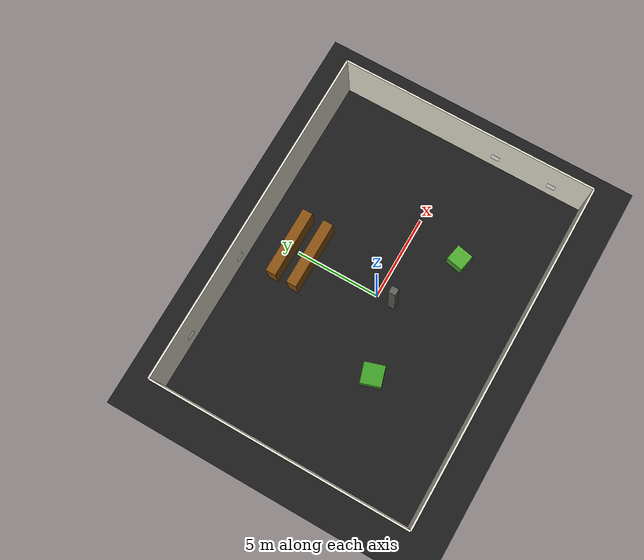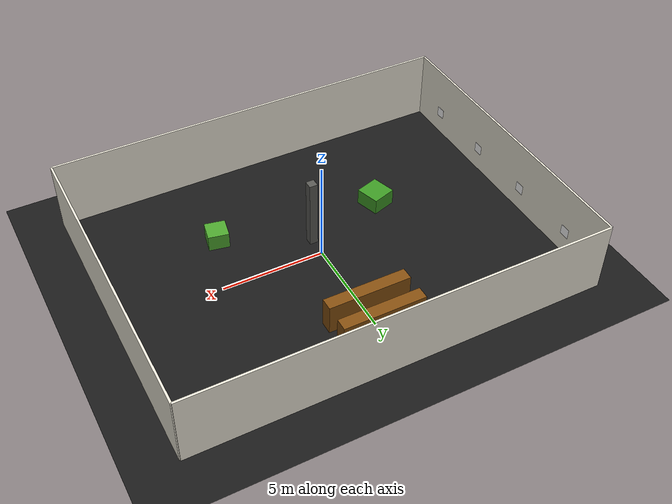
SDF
<sdf version="1.9">
 <world name="indoor_arena">
  <physics type="ode"><max_step_size>0.001</max_step_size><real_time_factor>1.0</real_time_factor></physics>
  <scene><ambient>0.6 0.6 0.6 1</ambient><background>0.7 0.7 0.7 1</background></scene>
  <light type="directional" name="sun">
   <pose>0 0 15 0 0 0</pose>
   <diffuse>0.9 0.9 0.9 1</diffuse>
   <specular>0.3 0.3 0.3 1</specular>
   <direction>-0.5 0.3 -1.0</direction>
  </light>
  <light type="point" name="ceiling_light_1">
   <pose>-4 3 4 0 0 0</pose>
   <diffuse>0.7 0.7 0.7 1</diffuse>
   <attenuation>
    <range>20</range>
    <constant>0.4</constant>
    <linear>0.01</linear>
    <quadratic>0.001</quadratic>
   </attenuation>
  </light>
  <light type="point" name="ceiling_light_2">
   <pose>4 3 4 0 0 0</pose>
   <diffuse>0.7 0.7 0.7 1</diffuse>
   <attenuation>
    <range>20</range>
    <constant>0.4</constant>
    <linear>0.01</linear>
    <quadratic>0.001</quadratic>
   </attenuation>
  </light>
  <light type="point" name="ceiling_light_3">
   <pose>-4 -4 4 0 0 0</pose>
   <diffuse>0.7 0.7 0.7 1</diffuse>
   <attenuation>
    <range>20</range>
    <constant>0.4</constant>
    <linear>0.01</linear>
    <quadratic>0.001</quadratic>
   </attenuation>
  </light>
  <light type="point" name="ceiling_light_4">
   <pose>4 -4 4 0 0 0</pose>
   <diffuse>0.7 0.7 0.7 1</diffuse>
   <attenuation>
    <range>20</range>
    <constant>0.4</constant>
    <linear>0.01</linear>
    <quadratic>0.001</quadratic>
   </attenuation>
  </light>
  <model name="ground_plane">
   <static>true</static>
   <link name="link">
    <collision name="collision">
     <geometry><plane><normal>0 0 1</normal><size>30 25</size></plane></geometry>
    </collision>
    <visual name="visual">
     <geometry><plane><normal>0 0 1</normal><size>30 25</size></plane></geometry>
     <material><ambient>0.1 0.1 0.1 1</ambient><diffuse>0.1 0.1 0.1 1</diffuse></material>
    </visual>
   </link>
  </model>
  <model name="wall_north">
   <static>true</static>
   <pose>0 7.55 1.75 0 0 0</pose>
   <link name="link">
    <collision name="collision"><geometry><box><size>20.1 0.1 3.5</size></box></geometry></collision>
    <visual name="visual">
     <geometry><box><size>20.1 0.1 3.5</size></box></geometry>
     <material><ambient>0.93 0.91 0.85 1</ambient><diffuse>0.93 0.91 0.85 1</diffuse></material>
    </visual>
   </link>
  </model>
  <model name="wall_south">
   <static>true</static>
   <pose>0 -7.55 1.75 0 0 0</pose>
   <link name="link">
    <collision name="collision"><geometry><box><size>20.1 0.1 3.5</size></box></geometry></collision>
    <visual name="visual">
     <geometry><box><size>20.1 0.1 3.5</size></box></geometry>
     <material><ambient>0.93 0.91 0.85 1</ambient><diffuse>0.93 0.91 0.85 1</diffuse></material>
    </visual>
   </link>
  </model>
  <model name="wall_east">
   <static>true</static>
   <pose>10.05 0 1.75 0 0 0</pose>
   <link name="link">
    <collision name="collision"><geometry><box><size>0.1 15.1 3.5</size></box></geometry></collision>
    <visual name="visual">
     <geometry><box><size>0.1 15.1 3.5</size></box></geometry>
     <material><ambient>0.93 0.91 0.85 1</ambient><diffuse>0.93 0.91 0.85 1</diffuse></material>
    </visual>
   </link>
  </model>
  <model name="wall_west">
   <static>true</static>
   <pose>-10.05 0 1.75 0 0 0</pose>
   <link name="link">
    <collision name="collision"><geometry><box><size>0.1 15.1 3.5</size></box></geometry></collision>
    <visual name="visual">
     <geometry><box><size>0.1 15.1 3.5</size></box></geometry>
     <material><ambient>0.93 0.91 0.85 1</ambient><diffuse>0.93 0.91 0.85 1</diffuse></material>
    </visual>
   </link>
  </model>
  <model name="shelf_a1">
   <static>true</static>
   <pose>0.0 5.5 0.75 0 0 0</pose>
   <link name="link">
    <collision name="collision"><geometry><box><size>4.0 0.6 1.5</size></box></geometry></collision>
    <visual name="visual">
     <geometry><box><size>4.0 0.6 1.5</size></box></geometry>
     <material><ambient>0.52 0.31 0.06 1</ambient><diffuse>0.52 0.31 0.06 1</diffuse></material>
    </visual>
   </link>
  </model>
  <model name="shelf_a2">
   <static>true</static>
   <pose>0.0 4.2 0.75 0 0 0</pose>
   <link name="link">
    <collision name="collision"><geometry><box><size>4.0 0.6 1.5</size></box></geometry></collision>
    <visual name="visual">
     <geometry><box><size>4.0 0.6 1.5</size></box></geometry>
     <material><ambient>0.52 0.31 0.06 1</ambient><diffuse>0.52 0.31 0.06 1</diffuse></material>
    </visual>
   </link>
  </model>
  <model name="crate_1">
   <static>true</static>
   <pose>-4.0 -2.0 0.4 0 0 0.3</pose>
   <link name="link">
    <collision name="collision"><geometry><box><size>1.2 1.2 0.8</size></box></geometry></collision>
    <visual name="visual">
     <geometry><box><size>1.2 1.2 0.8</size></box></geometry>
     <material><ambient>0.24 0.60 0.14 1</ambient><diffuse>0.24 0.60 0.14 1</diffuse></material>
    </visual>
   </link>
  </model>
  <model name="crate_2">
   <static>true</static>
   <pose>4.0 -3.0 0.4 0 0 -0.2</pose>
   <link name="link">
    <collision name="collision"><geometry><box><size>1.0 1.0 0.8</size></box></geometry></collision>
    <visual name="visual">
     <geometry><box><size>1.0 1.0 0.8</size></box></geometry>
     <material><ambient>0.30 0.65 0.18 1</ambient><diffuse>0.30 0.65 0.18 1</diffuse></material>
    </visual>
   </link>
  </model>
  <model name="pillar_1">
   <static>true</static>
   <pose>0.0 -1.0 1.75 0 0 0</pose>
   <link name="link">
    <collision name="collision"><geometry><box><size>0.4 0.4 3.5</size></box></geometry></collision>
    <visual name="visual">
     <geometry><box><size>0.4 0.4 3.5</size></box></geometry>
     <material><ambient>0.35 0.35 0.33 1</ambient><diffuse>0.35 0.35 0.33 1</diffuse></material>
    </visual>
   </link>
  </model>
  <include><uri>model://aruco_marker_0</uri><pose>-7.0 7.47 1.2 0 0 0</pose><name>aruco_0</name></include>
  <include><uri>model://aruco_marker_1</uri><pose>-2.0 7.47 1.2 0 0 0</pose><name>aruco_1</name></include>
  <include>
   <uri>model://aruco_marker_10</uri>
   <pose>9.97 -2.0 1.2 0 0 -1.5708</pose>
   <name>aruco_10</name>
  </include>
  <include>
   <uri>model://aruco_marker_11</uri>
   <pose>9.97 -5.5 1.2 0 0 -1.5708</pose>
   <name>aruco_11</name>
  </include>
  <include>
   <uri>model://aruco_marker_12</uri>
   <pose>-9.97 5.0 1.2 0 0 1.5708</pose>
   <name>aruco_12</name>
  </include>
  <include>
   <uri>model://aruco_marker_13</uri>
   <pose>-9.97 1.5 1.2 0 0 1.5708</pose>
   <name>aruco_13</name>
  </include>
  <include>
   <uri>model://aruco_marker_14</uri>
   <pose>-9.97 -2.0 1.2 0 0 1.5708</pose>
   <name>aruco_14</name>
  </include>
  <include>
   <uri>model://aruco_marker_15</uri>
   <pose>-9.97 -5.5 1.2 0 0 1.5708</pose>
   <name>aruco_15</name>
  </include>
 </world>
</sdf>

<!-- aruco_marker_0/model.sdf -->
<sdf version="1.9">
  <model name="aruco_marker_0">
    <static>true</static>
    <link name="link">
      <visual name="visual">
        <geometry>
          <box><size>0.5 0.005 0.5</size></box>
        </geometry>
        <material>
          <ambient>1 1 1 1</ambient>
          <diffuse>1 1 1 1</diffuse>
          <specular>0 0 0 1</specular>
          <pbr>
            <metal>
              <albedo_map>model://aruco_marker_0/materials/textures/aruco_0.png</albedo_map>
              <metalness>0.0</metalness>
              <roughness>1.0</roughness>
            </metal>
          </pbr>
        </material>
      </visual>
      <collision name="collision">
        <geometry>
          <box><size>0.5 0.005 0.5</size></box>
        </geometry>
      </collision>
    </link>
  </model>
</sdf>

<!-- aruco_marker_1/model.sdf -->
<sdf version="1.9">
  <model name="aruco_marker_1">
    <static>true</static>
    <link name="link">
      <visual name="visual">
        <geometry>
          <box><size>0.5 0.005 0.5</size></box>
        </geometry>
        <material>
          <ambient>1 1 1 1</ambient>
          <diffuse>1 1 1 1</diffuse>
          <specular>0 0 0 1</specular>
          <pbr>
            <metal>
              <albedo_map>model://aruco_marker_1/materials/textures/aruco_1.png</albedo_map>
              <metalness>0.0</metalness>
              <roughness>1.0</roughness>
            </metal>
          </pbr>
        </material>
      </visual>
      <collision name="collision">
        <geometry>
          <box><size>0.5 0.005 0.5</size></box>
        </geometry>
      </collision>
    </link>
  </model>
</sdf>

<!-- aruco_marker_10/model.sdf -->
<sdf version="1.9">
  <model name="aruco_marker_10">
    <static>true</static>
    <link name="link">
      <visual name="visual">
        <geometry>
          <box><size>0.5 0.005 0.5</size></box>
        </geometry>
        <material>
          <ambient>1 1 1 1</ambient>
          <diffuse>1 1 1 1</diffuse>
          <specular>0 0 0 1</specular>
          <pbr>
            <metal>
              <albedo_map>model://aruco_marker_10/materials/textures/aruco_10.png</albedo_map>
              <metalness>0.0</metalness>
              <roughness>1.0</roughness>
            </metal>
          </pbr>
        </material>
      </visual>
      <collision name="collision">
        <geometry>
          <box><size>0.5 0.005 0.5</size></box>
        </geometry>
      </collision>
    </link>
  </model>
</sdf>

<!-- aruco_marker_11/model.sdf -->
<sdf version="1.9">
  <model name="aruco_marker_11">
    <static>true</static>
    <link name="link">
      <visual name="visual">
        <geometry>
          <box><size>0.5 0.005 0.5</size></box>
        </geometry>
        <material>
          <ambient>1 1 1 1</ambient>
          <diffuse>1 1 1 1</diffuse>
          <specular>0 0 0 1</specular>
          <pbr>
            <metal>
              <albedo_map>model://aruco_marker_11/materials/textures/aruco_11.png</albedo_map>
              <metalness>0.0</metalness>
              <roughness>1.0</roughness>
            </metal>
          </pbr>
        </material>
      </visual>
      <collision name="collision">
        <geometry>
          <box><size>0.5 0.005 0.5</size></box>
        </geometry>
      </collision>
    </link>
  </model>
</sdf>

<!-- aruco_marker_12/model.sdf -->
<sdf version="1.9">
  <model name="aruco_marker_12">
    <static>true</static>
    <link name="link">
      <visual name="visual">
        <geometry>
          <box><size>0.5 0.005 0.5</size></box>
        </geometry>
        <material>
          <ambient>1 1 1 1</ambient>
          <diffuse>1 1 1 1</diffuse>
          <specular>0 0 0 1</specular>
          <pbr>
            <metal>
              <albedo_map>model://aruco_marker_12/materials/textures/aruco_12.png</albedo_map>
              <metalness>0.0</metalness>
              <roughness>1.0</roughness>
            </metal>
          </pbr>
        </material>
      </visual>
      <collision name="collision">
        <geometry>
          <box><size>0.5 0.005 0.5</size></box>
        </geometry>
      </collision>
    </link>
  </model>
</sdf>

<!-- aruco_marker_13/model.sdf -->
<sdf version="1.9">
  <model name="aruco_marker_13">
    <static>true</static>
    <link name="link">
      <visual name="visual">
        <geometry>
          <box><size>0.5 0.005 0.5</size></box>
        </geometry>
        <material>
          <ambient>1 1 1 1</ambient>
          <diffuse>1 1 1 1</diffuse>
          <specular>0 0 0 1</specular>
          <pbr>
            <metal>
              <albedo_map>model://aruco_marker_13/materials/textures/aruco_13.png</albedo_map>
              <metalness>0.0</metalness>
              <roughness>1.0</roughness>
            </metal>
          </pbr>
        </material>
      </visual>
      <collision name="collision">
        <geometry>
          <box><size>0.5 0.005 0.5</size></box>
        </geometry>
      </collision>
    </link>
  </model>
</sdf>

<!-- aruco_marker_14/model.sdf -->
<sdf version="1.9">
  <model name="aruco_marker_14">
    <static>true</static>
    <link name="link">
      <visual name="visual">
        <geometry>
          <box><size>0.5 0.005 0.5</size></box>
        </geometry>
        <material>
          <ambient>1 1 1 1</ambient>
          <diffuse>1 1 1 1</diffuse>
          <specular>0 0 0 1</specular>
          <pbr>
            <metal>
              <albedo_map>model://aruco_marker_14/materials/textures/aruco_14.png</albedo_map>
              <metalness>0.0</metalness>
              <roughness>1.0</roughness>
            </metal>
          </pbr>
        </material>
      </visual>
      <collision name="collision">
        <geometry>
          <box><size>0.5 0.005 0.5</size></box>
        </geometry>
      </collision>
    </link>
  </model>
</sdf>

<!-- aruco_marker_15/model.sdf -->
<sdf version="1.9">
  <model name="aruco_marker_15">
    <static>true</static>
    <link name="link">
      <visual name="visual">
        <geometry>
          <box><size>0.5 0.005 0.5</size></box>
        </geometry>
        <material>
          <ambient>1 1 1 1</ambient>
          <diffuse>1 1 1 1</diffuse>
          <specular>0 0 0 1</specular>
          <pbr>
            <metal>
              <albedo_map>model://aruco_marker_15/materials/textures/aruco_15.png</albedo_map>
              <metalness>0.0</metalness>
              <roughness>1.0</roughness>
            </metal>
          </pbr>
        </material>
      </visual>
      <collision name="collision">
        <geometry>
          <box><size>0.5 0.005 0.5</size></box>
        </geometry>
      </collision>
    </link>
  </model>
</sdf>
